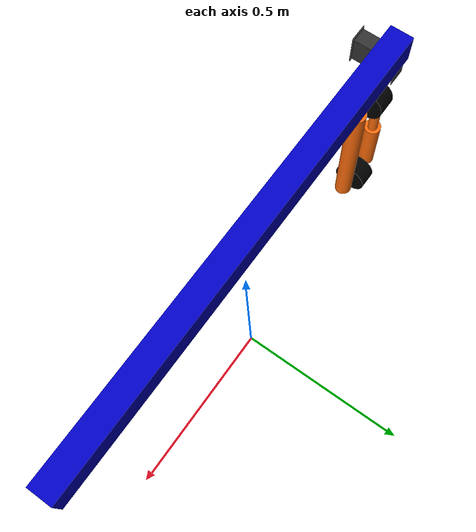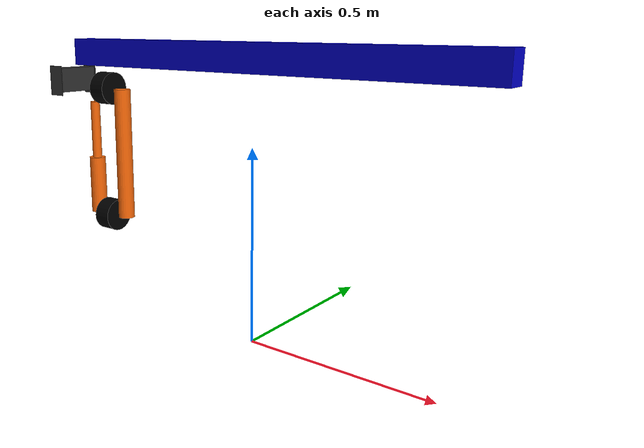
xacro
<?xml version="1.0"?>
<robot xmlns:xacro="http://www.ros.org/wiki/xacro" name="ofa_robot">
  <!-- Arguments -->
  <xacro:arg name="use_mock_hardware" default="false" />
  <xacro:arg name="read_only" default="false" />

  <!-- Load joint_limits -->
  <xacro:property name="joint_limits_file" value="$(find ofa_moveit_config)/config/joint_limits.yaml" />
  <xacro:property name="joint_limits" value="${xacro.load_yaml(joint_limits_file)['joint_limits']}"/>

  <!-- Import ofa_robot urdf file -->
  <xacro:include filename="$(find ofa_moveit_config)/urdf/ofa_robot_description.urdf.xacro" />

  <!-- Import control_xacro -->
  <xacro:include filename="$(find ofa_moveit_config)/ros2_control/ofa_robot.ros2_control.xacro" />

  <xacro:ofa_robot_ros2_control use_mock_hardware="$(arg use_mock_hardware)" read_only="$(arg read_only)" />

</robot>

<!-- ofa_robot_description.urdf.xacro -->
<robot xmlns:xacro="http://www.ros.org/wiki/xacro">
  <!-- Import materials -->
  <xacro:include filename="materials.urdf.xacro" />

  <!-- Axis dimensions -->
  <xacro:property name="axis_l" value="1.216" />
  <xacro:property name="axis_w" value="0.06" />
  <xacro:property name="axis_h" value="0.072" />

  <!-- Collision boxes -->
  <xacro:property name="frame_l" value="1.3" />
  <xacro:property name="frame_w" value="0.9" />
  <xacro:property name="frame_h" value="0.03" />
  <xacro:property name="box_w" value="0.01" />

  <!-- Side (Wheels) -->
  <xacro:property name="frame_l" value="1.3" />
  <xacro:property name="frame_w" value="0.8" />
  <xacro:property name="frame_h" value="0.03" />

  <!-- Frame dimensions -->
  <xacro:property name="frame_l" value="1.3" />
  <xacro:property name="frame_w" value="0.8" />
  <xacro:property name="frame_h" value="0.03" />

  <!-- Distance between carriage hard stop and end of axis -->
  <xacro:property name="carriage_off" value="${axis_l-0.116-1}" />

  <!-- Distance between axis carriage and center of first motor -->
  <xacro:property name="attachment_off" value="${0.06+0.002}" />

  <!-- Distance between ground and top of axis -->
  <!-- Real height is lower but we leave some leeway -->
  <xacro:property name="height" value="${0.75}" />

  <!-- Distance between motor and tube -->
  <xacro:property name="tube_off" value="${0.01}" />

  <!-- Motor dimensions -->
  <xacro:property name="motor_r" value="${0.089/2}" />
  <xacro:property name="motor_h" value="0.05025" />

  <!-- Offset between center of motor and center of carriage in x-direction -->
  <xacro:property name="motor_off" value="${-0.0026}" />

  <!-- Camera enclosure dimensions -->
  <xacro:property name="camera_shield_w" value="0.12" />
  <xacro:property name="camera_shield_h" value="0.08" />
  <xacro:property name="camera_shield_l" value="0.048" />
  <xacro:property name="camera_shield_wall" value="0.002" />

  <!-- Offset between camera enclosure and motor center -->
  <xacro:property name="camera_shield_off_x" value="${-motor_h/2-0.04355}" />
  <xacro:property name="camera_shield_off_y" value="-0.044" />

  <!-- Camera dimensions -->
  <xacro:property name="camera_w" value="0.11526" />
  <xacro:property name="camera_h" value="0.06525" />
  <xacro:property name="camera_l" value="0.04026" />
  <xacro:property name="camera_off_y" value="0.00045" />
  <xacro:property name="camera_off_z" value="0.00615" />

  <!-- Offset between camera and optical center of rgb camera -->
  <xacro:property name="color_off_y" value="0.03" />
  <xacro:property name="color_off_z" value="0.05659361" />

  <!-- Tube dimensions -->
  <xacro:property name="arm_r" value="${0.045/2}" />
  <xacro:property name="arm1_l" value="${0.451-2*motor_r}" />
  <xacro:property name="arm2_l" value="0.161" />

  <!-- End effector dimensions -->
  <xacro:property name="end_base_r" value="0.013" />
  <xacro:property name="end_base_l" value="0.16" />
  <xacro:property name="end_tip_r" value="0.003" />
  <xacro:property name="end_tip_l" value="0.034" />

  <link name="world"/>

  <joint name="base_joint" type="fixed">
    <origin xyz="0 0 ${height}" rpy="0 0 0" />
    <parent link="world" />
    <child link="base_link" />
  </joint>
  <link name="base_link">
    <visual>
      <origin xyz="0 0 ${-axis_h/2}" rpy="0 0 0" />
      <geometry>
        <box size="${axis_l} ${axis_w} ${axis_h}" />
      </geometry>
      <material name="blue"/>
    </visual>
    <collision>
      <origin xyz="0 0 ${-axis_h/2}" rpy="0 0 0" />
      <geometry>
        <box size="${axis_l} ${axis_w} ${axis_h}" />
      </geometry>
    </collision>
    <!-- Top (Frame) -->
    <collision>
      <origin xyz="0 0 ${-frame_h/2}" rpy="0 0 0" />
      <geometry>
        <box size="${frame_l} ${frame_w} ${frame_h}" />
      </geometry>
    </collision>
    <!-- Side (Wheels) -->
    <collision>
      <origin xyz="0 ${-frame_w/2-box_w/2} ${-height/2}" rpy="0 0 0" />
      <geometry>
        <box size="${frame_l} ${box_w} ${height}" />
      </geometry>
    </collision>
    <collision>
      <origin xyz="0 ${frame_w/2+box_w/2} ${-height/2}" rpy="0 0 0" />
      <geometry>
        <box size="${frame_l} ${box_w} ${height}" />
      </geometry>
    </collision>
    <!-- Bottom (Ground) -->
    <collision>
      <origin xyz="0 0 ${-height-box_w/2}" rpy="0 0 0" />
      <geometry>
        <box size="${frame_l} ${frame_w} ${box_w}" />
      </geometry>
    </collision>
  </link>

  <joint name="joint1" type="prismatic">
    <origin xyz="${-axis_l/2+carriage_off+motor_off} 0 ${-axis_h-attachment_off}" rpy="0 0 0" />
    <parent link="base_link" />
    <child link="link1" />
    <axis xyz="-1 0 0" />
    <limit lower="${joint_limits['joint1']['min_position']}" upper="${joint_limits['joint1']['max_position']}"
    velocity="${joint_limits['joint1']['max_velocity']}" effort="100" />
  </joint>

  <link name="link1">
    <visual>
      <origin xyz="0 0 0" rpy="0 ${pi/2} 0" />
      <geometry>
        <cylinder length="${motor_h}" radius="${motor_r}" />
      </geometry>
      <material name="black"/>
    </visual>
    <collision>
      <origin xyz="0 0 0" rpy="0 ${pi/2} 0" />
      <geometry>
        <cylinder length="${motor_h}" radius="${motor_r}" />
      </geometry>
    </collision>
  </link>

  <joint name="camera_shield_joint" type="fixed">
    <origin xyz="${camera_shield_off_x-camera_shield_l/2} ${camera_shield_off_y} ${attachment_off}" rpy="0 0 0" />
    <parent link="link1" />
    <child link="camera_shield_link" />
  </joint>

  <link name="camera_shield_link">
    <visual>
      <origin xyz="0 ${-camera_shield_w/2+camera_shield_wall/2} ${-camera_shield_h/2}" rpy="0 0 0" />
      <geometry>
        <box size="${camera_shield_l} ${camera_shield_wall} ${camera_shield_h}" />
      </geometry>
      <material name="grey"/>
    </visual>
    <visual>
      <origin xyz="0 ${camera_shield_w/2-camera_shield_wall/2} ${-camera_shield_h/2}" rpy="0 0 0" />
      <geometry>
        <box size="${camera_shield_l} ${camera_shield_wall} ${camera_shield_h}" />
      </geometry>
      <material name="grey"/>
    </visual>
    <collision>
      <origin xyz="0 ${-camera_shield_w/2+camera_shield_wall/2} ${-camera_shield_h/2}" rpy="0 0 0" />
      <geometry>
        <box size="${camera_shield_l} ${camera_shield_wall} ${camera_shield_h}" />
      </geometry>
    </collision>
    <collision>
      <origin xyz="0 ${camera_shield_w/2-camera_shield_wall/2} ${-camera_shield_h/2}" rpy="0 0 0" />
      <geometry>
        <box size="${camera_shield_l} ${camera_shield_wall} ${camera_shield_h}" />
      </geometry>
    </collision>
  </link>

  <joint name="camera_joint" type="fixed">
    <origin xyz="0 ${camera_off_y} ${-camera_off_z}" rpy="0 0 0" />
    <parent link="camera_shield_link" />
    <child link="camera_link" />
  </joint>

  <link name="camera_link">
    <visual>
      <origin xyz="0 0 ${-camera_h/2}" rpy="0 0 0" />
      <geometry>
        <box size="${camera_l} ${camera_w} ${camera_h}" />
      </geometry>
      <material name="grey"/>
    </visual>
    <collision>
      <origin xyz="0 0 ${-camera_h/2}" rpy="0 0 0" />
      <geometry>
        <box size="${camera_l} ${camera_w} ${camera_h}" />
      </geometry>
    </collision>
  </link>

  <joint name="camera_color_joint" type="fixed">
    <origin xyz="0 ${color_off_y} ${-color_off_z}" rpy="${pi} 0 ${pi/2}" />
    <parent link="camera_link" />
    <child link="camera_color_frame" />
  </joint>
  <link name="camera_color_frame" />

  <joint name="joint2" type="revolute">
    <origin xyz="${motor_h/2+tube_off+arm_r} 0 0" rpy="0 0 0" />
    <parent link="link1" />
    <child link="link2" />
    <axis xyz="1 0 0" />
    <limit lower="${joint_limits['joint2']['min_position']}" upper="${joint_limits['joint2']['max_position']}"
    velocity="${joint_limits['joint2']['max_velocity']}" effort="100" />
  </joint>

  <link name="link2">
    <visual>
      <origin xyz="0 0 ${-arm1_l/2}" rpy="0 0 0" />
      <geometry>
        <cylinder length="${arm1_l}" radius="${arm_r}" />
      </geometry>
      <material name="orange"/>
    </visual>
    <collision>
      <origin xyz="0 0 ${-arm1_l/2}" rpy="0 0 0" />
      <geometry>
        <cylinder length="${arm1_l}" radius="${arm_r}" />
      </geometry>
    </collision>
  </link>

  <joint name="joint2_motor" type="fixed">
    <origin xyz="${-motor_h/2-tube_off-arm_r} 0 ${-arm1_l}" rpy="0 0 0" />
    <parent link="link2" />
    <child link="link2_motor" />
  </joint>

  <link name="link2_motor">
    <visual>
      <origin xyz="0 0 0" rpy="0 ${pi/2} 0" />
      <geometry>
        <cylinder length="${motor_h}" radius="${motor_r}" />
      </geometry>
      <material name="black"/>
    </visual>
    <collision>
      <origin xyz="0 0 0" rpy="0 ${pi/2} 0" />
      <geometry>
        <cylinder length="${motor_h}" radius="${motor_r}" />
      </geometry>
    </collision>
  </link>

  <joint name="joint3" type="revolute">
    <origin xyz="${-motor_h/2-tube_off-arm_r} 0 0" rpy="${pi} 0 0" />
    <parent link="link2_motor" />
    <child link="link3" />
    <axis xyz="-1 0 0" />
    <limit lower="${joint_limits['joint3']['min_position']}" upper="${joint_limits['joint3']['max_position']}"
    velocity="${joint_limits['joint3']['max_velocity']}" effort="100" />
  </joint>

  <link name="link3">
    <visual>
      <origin xyz="0 0 ${-arm2_l/2}" rpy="0 0 0" />
      <geometry>
        <cylinder length="${arm2_l}" radius="${arm_r}" />
      </geometry>
      <material name="orange"/>
    </visual>
    <visual>
      <origin xyz="0 0 ${-arm2_l-end_base_l/2}" rpy="0 0 0" />
      <geometry>
        <cylinder length="${end_base_l}" radius="${end_base_r}" />
      </geometry>
      <material name="orange"/>
    </visual>
    <visual>
      <origin xyz="0 0 ${-arm2_l-end_base_l-end_tip_l/2}" rpy="0 0 0" />
      <geometry>
        <cylinder length="${end_tip_l}" radius="${end_tip_r}" />
      </geometry>
      <material name="orange"/>
    </visual>
    <collision>
      <origin xyz="0 0 ${-arm2_l/2}" rpy="0 0 0" />
      <geometry>
        <cylinder length="${arm2_l}" radius="${arm_r}" />
      </geometry>
    </collision>
    <collision>
      <origin xyz="0 0 ${-arm2_l-end_base_l/2}" rpy="0 0 0" />
      <geometry>
        <cylinder length="${end_base_l}" radius="${end_base_r}" />
      </geometry>
    </collision>
    <collision>
      <origin xyz="0 0 ${-arm2_l-end_base_l-end_tip_l/2}" rpy="0 0 0" />
      <geometry>
        <cylinder length="${end_tip_l}" radius="${end_tip_r}" />
      </geometry>
    </collision>
  </link>

  <joint name="joint3_end" type="fixed">
    <origin xyz="0 0 ${-arm2_l-end_base_l-end_tip_l}" rpy="0 0 0" />
    <parent link="link3" />
    <child link="eef_link" />
  </joint>
  <link name="eef_link" />

</robot>

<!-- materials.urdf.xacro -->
<robot>
  <material name="black">
    <color rgba="0 0 0 ${255/255}" />
  </material>
  <material name="dark_grey">
    <color rgba="0 0 ${155/255} ${255/255}" />
  </material>
  <material name="blue">
    <color rgba="0 0 ${200/255} ${255/255}" />
  </material>
  <material name="green">
    <color rgba="0 ${200/255} 0 ${255/255}" />
  </material>
  <material name="grey">
    <color rgba="${50/255} ${50/255} ${50/255} ${255/255}" />
  </material>
  <material name="orange">
    <color rgba="${255/255} ${108/255} ${10/255} ${255/255}" />
  </material>
  <material name="brown">
    <color rgba="${222/255} ${207/255} ${195/255} ${255/255}" />
  </material>
  <material name="red">
    <color rgba="${200/255} 0 0 ${255/255}" />
  </material>
  <material name="white">
    <color rgba="${255/255} ${255/255} ${255/255} ${255/255}" />
  </material>
</robot>
